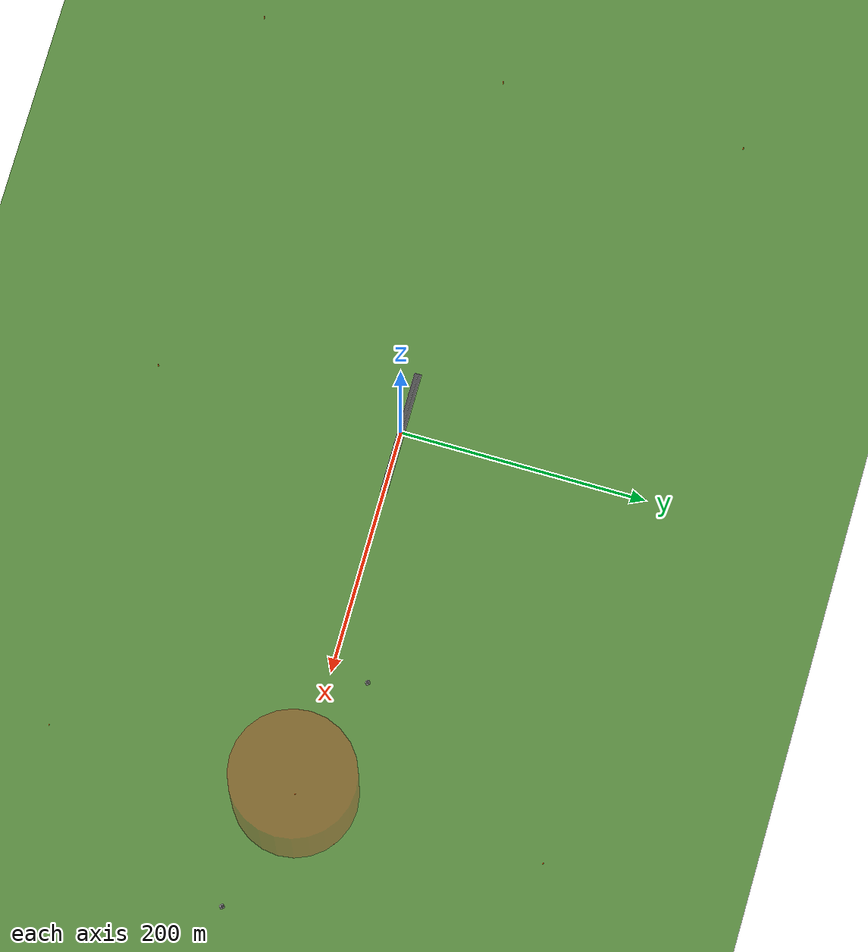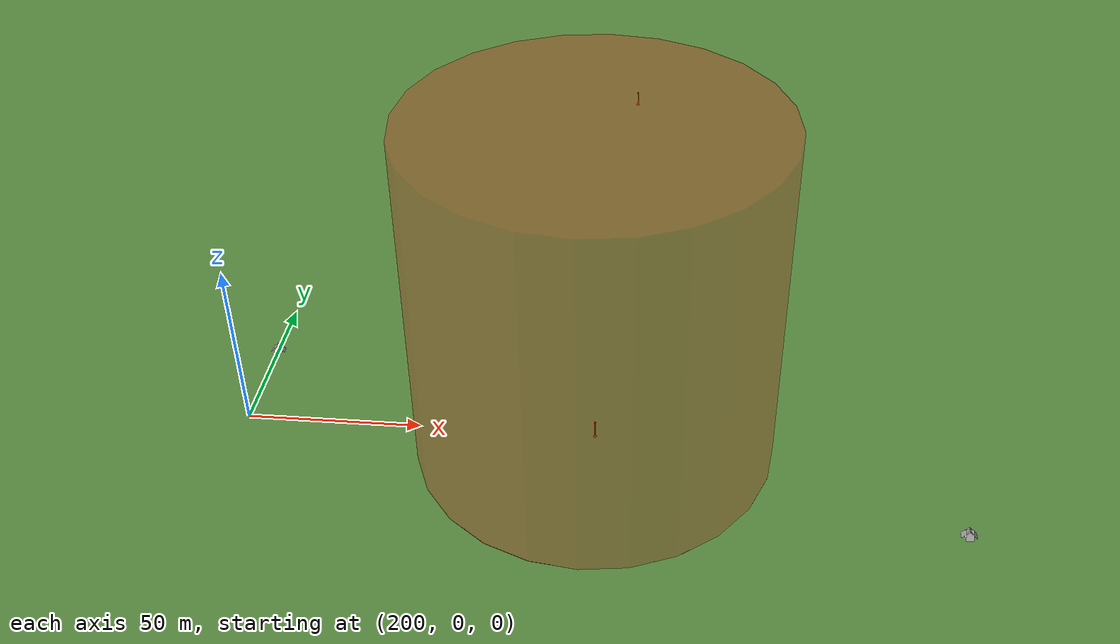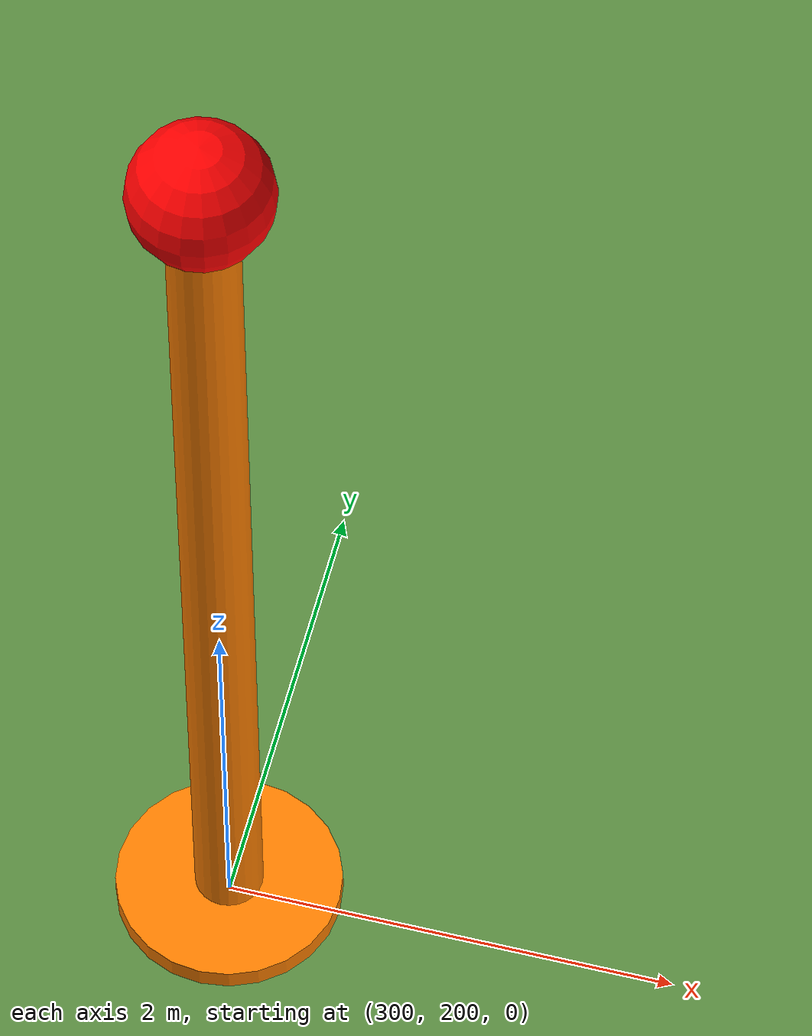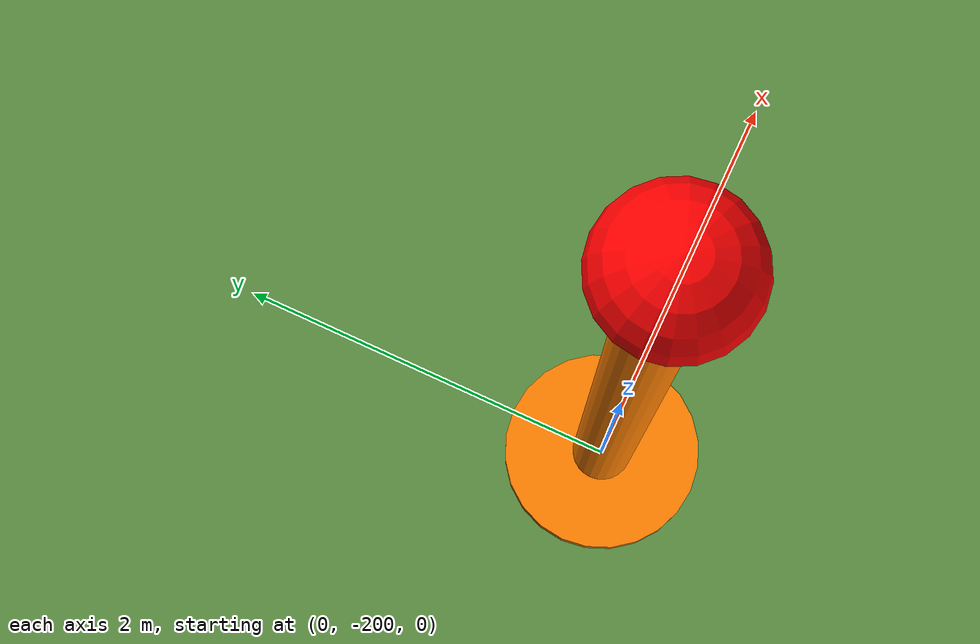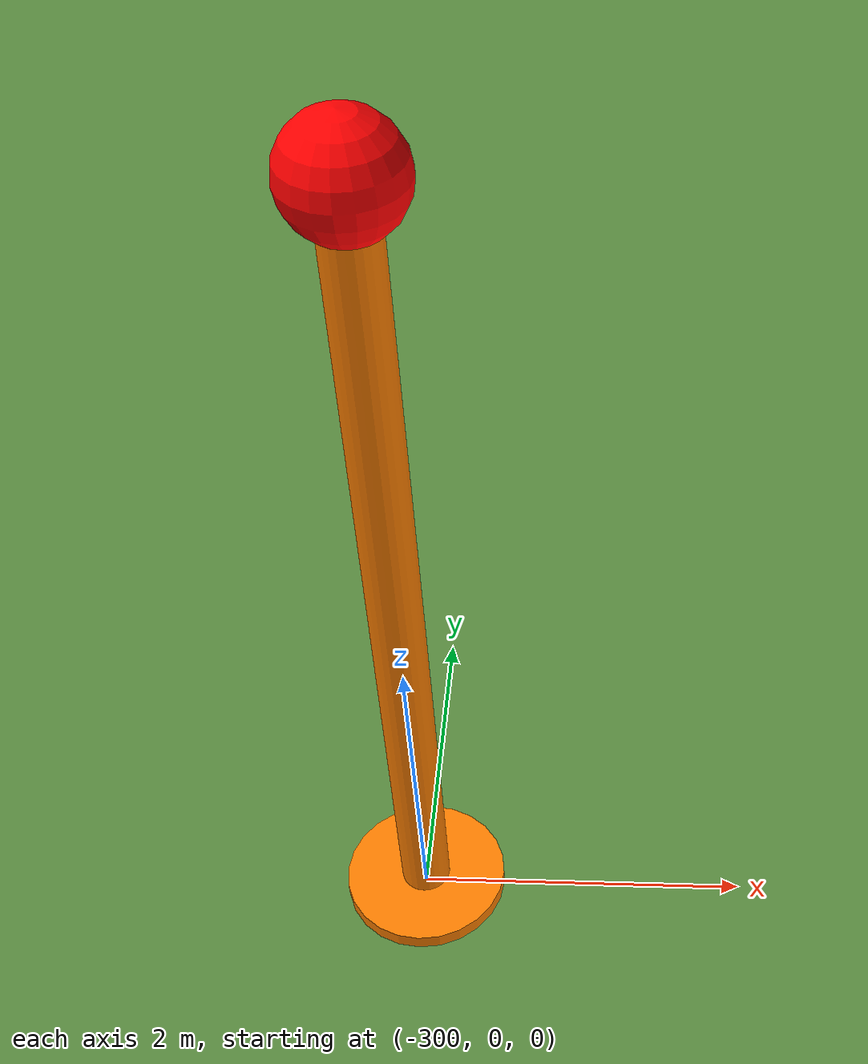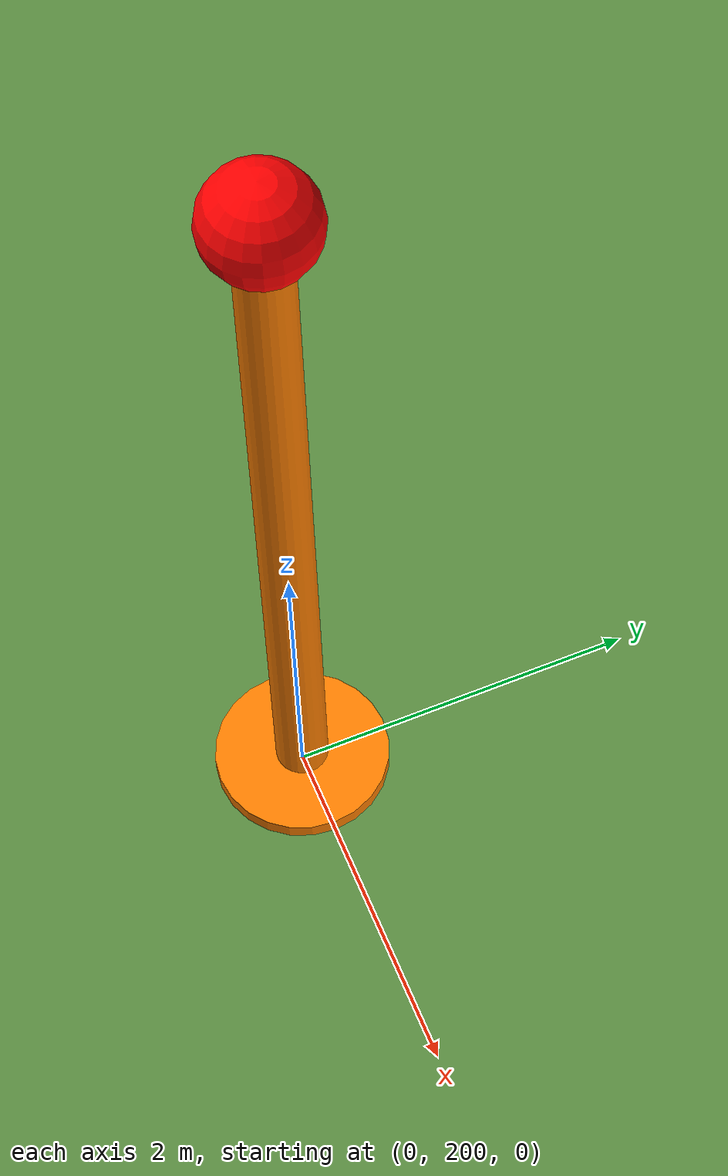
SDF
<?xml version="1.0" encoding="UTF-8"?>
<sdf version='1.9'>
  <world name='teknofest_competition'>

    <plugin filename="gz-sim-physics-system" name="gz::sim::systems::Physics"></plugin>
    <plugin filename="gz-sim-user-commands-system" name="gz::sim::systems::UserCommands"></plugin>
    <plugin filename="gz-sim-scene-broadcaster-system" name="gz::sim::systems::SceneBroadcaster"></plugin>
    <plugin filename="gz-sim-contact-system" name="gz::sim::systems::Contact"></plugin>
    <plugin filename="gz-sim-imu-system" name="gz::sim::systems::Imu"></plugin>
    <plugin filename="gz-sim-air-pressure-system" name="gz::sim::systems::AirPressure"></plugin>
    <plugin filename="gz-sim-air-speed-system" name="gz::sim::systems::AirSpeed"></plugin>
    <plugin filename="gz-sim-apply-link-wrench-system" name="gz::sim::systems::ApplyLinkWrench"></plugin>
    <plugin filename="gz-sim-navsat-system" name="gz::sim::systems::NavSat"></plugin>
    <plugin filename="gz-sim-magnetometer-system" name="gz::sim::systems::Magnetometer"></plugin>
    <plugin filename="gz-sim-sensors-system" name="gz::sim::systems::Sensors">
      <render_engine>ogre2</render_engine>
    </plugin>

    <!-- Physics: must match PX4 default world for correct sensor simulation -->
    <physics type="ode">
      <max_step_size>0.004</max_step_size>
      <real_time_factor>1.0</real_time_factor>
      <real_time_update_rate>250</real_time_update_rate>
    </physics>
    <gravity>0 0 -9.8</gravity>
    <magnetic_field>6e-06 2.3e-05 -4.2e-05</magnetic_field>
    <atmosphere type="adiabatic"/>

    <!-- Sun -->
    <light name='sun' type='directional'>
      <pose>0 0 500 0 0 0</pose>
      <diffuse>0.9 0.9 0.9 1</diffuse>
      <specular>0.2 0.2 0.2 1</specular>
      <direction>-0.5 0.1 -0.9</direction>
      <cast_shadows>true</cast_shadows>
    </light>

    <!-- Ambient fill light for QR readability -->
    <light name='ambient_fill' type='point'>
      <pose>0 0 80 0 0 0</pose>
      <diffuse>0.4 0.4 0.45 1</diffuse>
      <attenuation>
        <range>500</range>
        <constant>0.5</constant>
        <linear>0.001</linear>
        <quadratic>0.0001</quadratic>
      </attenuation>
    </light>

    <!-- Scene -->
    <scene>
      <ambient>0.4 0.4 0.4 1</ambient>
      <background>0.7 0.8 0.9 1</background>
      <shadows>true</shadows>
    </scene>

    <!-- Large ground plane -->
    <model name='ground_plane'>
      <static>true</static>
      <link name='link'>
        <visual name='ground'>
          <geometry>
            <plane><normal>0 0 1</normal><size>2000 2000</size></plane>
          </geometry>
          <material>
            <ambient>0.35 0.55 0.25 1</ambient>
            <diffuse>0.35 0.55 0.25 1</diffuse>
          </material>
        </visual>
        <collision name='collision'>
          <geometry>
            <plane><normal>0 0 1</normal></plane>
          </geometry>
          <surface>
            <friction>
              <ode><mu>0.8</mu><mu2>0.8</mu2></ode>
            </friction>
          </surface>
        </collision>
      </link>
    </model>

    <!-- Runway at origin, along X axis -->
    <include>
      <uri>model://teknofest_runway</uri>
      <name>runway</name>
      <pose>0 0 0 0 0 0</pose>
    </include>

    <!-- QR target 200m down the runway, offset 30m to the left -->
    <include>
      <uri>model://teknofest_qr_target</uri>
      <name>qr_target</name>
      <pose>200 30 0 0 0 0</pose>
    </include>

    <!-- Second QR target 400m down, offset -30m right -->
    <include>
      <uri>model://teknofest_qr_target</uri>
      <name>qr_target_2</name>
      <pose>400 -30 0 0 0 0</pose>
    </include>

    <!-- HSS zone example (can be spawned/removed dynamically) -->
    <include>
      <uri>model://teknofest_hss_zone</uri>
      <name>hss_zone_1</name>
      <pose>300 0 0 0 0 0</pose>
    </include>

    <!-- Boundary markers: 4 corners of a 600m x 400m flight area -->
    <include>
      <uri>model://teknofest_boundary_marker</uri>
      <name>boundary_ne</name>
      <pose>300 200 0 0 0 0</pose>
    </include>
    <include>
      <uri>model://teknofest_boundary_marker</uri>
      <name>boundary_se</name>
      <pose>300 -200 0 0 0 0</pose>
    </include>
    <include>
      <uri>model://teknofest_boundary_marker</uri>
      <name>boundary_nw</name>
      <pose>-300 200 0 0 0 0</pose>
    </include>
    <include>
      <uri>model://teknofest_boundary_marker</uri>
      <name>boundary_sw</name>
      <pose>-300 -200 0 0 0 0</pose>
    </include>

    <!-- Additional mid-point boundary markers for visibility -->
    <include>
      <uri>model://teknofest_boundary_marker</uri>
      <name>boundary_n</name>
      <pose>0 200 0 0 0 0</pose>
    </include>
    <include>
      <uri>model://teknofest_boundary_marker</uri>
      <name>boundary_s</name>
      <pose>0 -200 0 0 0 0</pose>
    </include>
    <include>
      <uri>model://teknofest_boundary_marker</uri>
      <name>boundary_e</name>
      <pose>300 0 0 0 0 0</pose>
    </include>
    <include>
      <uri>model://teknofest_boundary_marker</uri>
      <name>boundary_w</name>
      <pose>-300 0 0 0 0 0</pose>
    </include>

    <!-- Spherical coordinates: Ankara/Etimesgut test location.
         TODO: Yarışma alanı koordinatları belli olunca güncellenecek. -->
    <spherical_coordinates>
      <surface_model>EARTH_WGS84</surface_model>
      <world_frame_orientation>ENU</world_frame_orientation>
      <latitude_deg>39.949</latitude_deg>
      <longitude_deg>32.688</longitude_deg>
      <elevation>850.0</elevation>
      <heading_deg>0</heading_deg>
    </spherical_coordinates>

  </world>
</sdf>

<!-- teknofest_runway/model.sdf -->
<sdf version='1.9'>
  <model name='teknofest_runway'>
    <static>true</static>
    <link name='link'>
      <visual name='runway_surface'>
        <geometry>
          <box><size>100 6 0.05</size></box>
        </geometry>
        <material>
          <ambient>0.3 0.3 0.3 1</ambient>
          <diffuse>0.3 0.3 0.3 1</diffuse>
        </material>
      </visual>
      <!-- Center line dashes -->
      <visual name='center_line'>
        <pose>0 0 0.03 0 0 0</pose>
        <geometry>
          <box><size>100 0.15 0.01</size></box>
        </geometry>
        <material>
          <ambient>1 1 1 1</ambient>
          <diffuse>1 1 1 1</diffuse>
        </material>
      </visual>
      <!-- Edge lines -->
      <visual name='left_edge'>
        <pose>0 2.9 0.03 0 0 0</pose>
        <geometry>
          <box><size>100 0.15 0.01</size></box>
        </geometry>
        <material>
          <ambient>1 1 1 1</ambient>
          <diffuse>1 1 1 1</diffuse>
        </material>
      </visual>
      <visual name='right_edge'>
        <pose>0 -2.9 0.03 0 0 0</pose>
        <geometry>
          <box><size>100 0.15 0.01</size></box>
        </geometry>
        <material>
          <ambient>1 1 1 1</ambient>
          <diffuse>1 1 1 1</diffuse>
        </material>
      </visual>
      <collision name='collision'>
        <geometry>
          <box><size>100 6 0.05</size></box>
        </geometry>
        <surface>
          <friction>
            <ode><mu>0.8</mu><mu2>0.8</mu2></ode>
          </friction>
        </surface>
      </collision>
    </link>
  </model>
</sdf>

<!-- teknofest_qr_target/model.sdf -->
<sdf version='1.9'>
  <model name='teknofest_qr_target'>
    <static>true</static>
    <link name='link'>
      <!-- 2m x 2m QR board lying on ground -->
      <visual name='qr_board'>
        <pose>0 0 0.01 0 0 0</pose>
        <geometry>
          <box><size>2 2 0.02</size></box>
        </geometry>
        <material>
          <ambient>1 1 1 1</ambient>
          <diffuse>1 1 1 1</diffuse>
        </material>
      </visual>
      <collision name='board_collision'>
        <pose>0 0 0.01 0 0 0</pose>
        <geometry>
          <box><size>2 2 0.02</size></box>
        </geometry>
      </collision>

      <!-- 4 angled plates at 45 degrees, 3m high, covering each side -->
      <!-- Front plate (+X side) -->
      <visual name='plate_front'>
        <pose>1 0 1.5 0 -0.7854 0</pose>
        <geometry>
          <box><size>0.02 2 3</size></box>
        </geometry>
        <material>
          <ambient>0.6 0.6 0.6 1</ambient>
          <diffuse>0.6 0.6 0.6 1</diffuse>
        </material>
      </visual>
      <collision name='plate_front_collision'>
        <pose>1 0 1.5 0 -0.7854 0</pose>
        <geometry>
          <box><size>0.02 2 3</size></box>
        </geometry>
      </collision>

      <!-- Back plate (-X side) -->
      <visual name='plate_back'>
        <pose>-1 0 1.5 0 0.7854 0</pose>
        <geometry>
          <box><size>0.02 2 3</size></box>
        </geometry>
        <material>
          <ambient>0.6 0.6 0.6 1</ambient>
          <diffuse>0.6 0.6 0.6 1</diffuse>
        </material>
      </visual>
      <collision name='plate_back_collision'>
        <pose>-1 0 1.5 0 0.7854 0</pose>
        <geometry>
          <box><size>0.02 2 3</size></box>
        </geometry>
      </collision>

      <!-- Left plate (+Y side) -->
      <visual name='plate_left'>
        <pose>0 1 1.5 0.7854 0 0</pose>
        <geometry>
          <box><size>2 0.02 3</size></box>
        </geometry>
        <material>
          <ambient>0.6 0.6 0.6 1</ambient>
          <diffuse>0.6 0.6 0.6 1</diffuse>
        </material>
      </visual>
      <collision name='plate_left_collision'>
        <pose>0 1 1.5 0.7854 0 0</pose>
        <geometry>
          <box><size>2 0.02 3</size></box>
        </geometry>
      </collision>

      <!-- Right plate (-Y side) -->
      <visual name='plate_right'>
        <pose>0 -1 1.5 -0.7854 0 0</pose>
        <geometry>
          <box><size>2 0.02 3</size></box>
        </geometry>
        <material>
          <ambient>0.6 0.6 0.6 1</ambient>
          <diffuse>0.6 0.6 0.6 1</diffuse>
        </material>
      </visual>
      <collision name='plate_right_collision'>
        <pose>0 -1 1.5 -0.7854 0 0</pose>
        <geometry>
          <box><size>2 0.02 3</size></box>
        </geometry>
      </collision>
    </link>
  </model>
</sdf>

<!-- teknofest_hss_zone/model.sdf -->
<sdf version='1.9'>
  <model name='teknofest_hss_zone'>
    <static>true</static>
    <link name='link'>
      <!-- Red semi-transparent cylinder: 50m radius default, 100m visible height -->
      <!-- Scale via world spawn pose or model override -->
      <visual name='hss_cylinder'>
        <geometry>
          <cylinder><radius>50</radius><length>100</length></cylinder>
        </geometry>
        <pose>0 0 50 0 0 0</pose>
        <material>
          <ambient>1 0 0 0.25</ambient>
          <diffuse>1 0 0 0.25</diffuse>
          <specular>0.1 0 0 0.1</specular>
        </material>
        <transparency>0.75</transparency>
      </visual>
      <!-- Ground ring to mark base clearly -->
      <visual name='hss_ring'>
        <pose>0 0 0.05 0 0 0</pose>
        <geometry>
          <cylinder><radius>50</radius><length>0.1</length></cylinder>
        </geometry>
        <material>
          <ambient>1 0 0 0.8</ambient>
          <diffuse>1 0 0 0.8</diffuse>
        </material>
      </visual>
    </link>
  </model>
</sdf>

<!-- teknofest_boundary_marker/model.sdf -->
<sdf version='1.9'>
  <model name='teknofest_boundary_marker'>
    <static>true</static>
    <link name='link'>
      <!-- Tall orange pole: 5m high, 0.15m radius -->
      <visual name='pole'>
        <pose>0 0 2.5 0 0 0</pose>
        <geometry>
          <cylinder><radius>0.15</radius><length>5</length></cylinder>
        </geometry>
        <material>
          <ambient>1 0.5 0 1</ambient>
          <diffuse>1 0.5 0 1</diffuse>
        </material>
      </visual>
      <!-- Base plate for visibility -->
      <visual name='base'>
        <pose>0 0 0.05 0 0 0</pose>
        <geometry>
          <cylinder><radius>0.5</radius><length>0.1</length></cylinder>
        </geometry>
        <material>
          <ambient>1 0.5 0 1</ambient>
          <diffuse>1 0.5 0 1</diffuse>
        </material>
      </visual>
      <!-- Top sphere -->
      <visual name='top_ball'>
        <pose>0 0 5.15 0 0 0</pose>
        <geometry>
          <sphere><radius>0.3</radius></sphere>
        </geometry>
        <material>
          <ambient>1 0 0 1</ambient>
          <diffuse>1 0 0 1</diffuse>
        </material>
      </visual>
      <collision name='pole_collision'>
        <pose>0 0 2.5 0 0 0</pose>
        <geometry>
          <cylinder><radius>0.15</radius><length>5</length></cylinder>
        </geometry>
      </collision>
    </link>
  </model>
</sdf>
